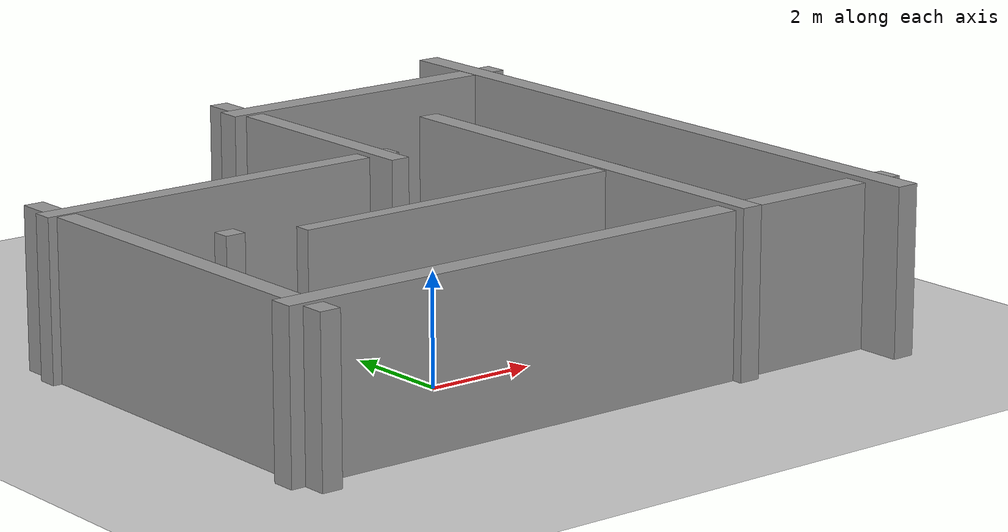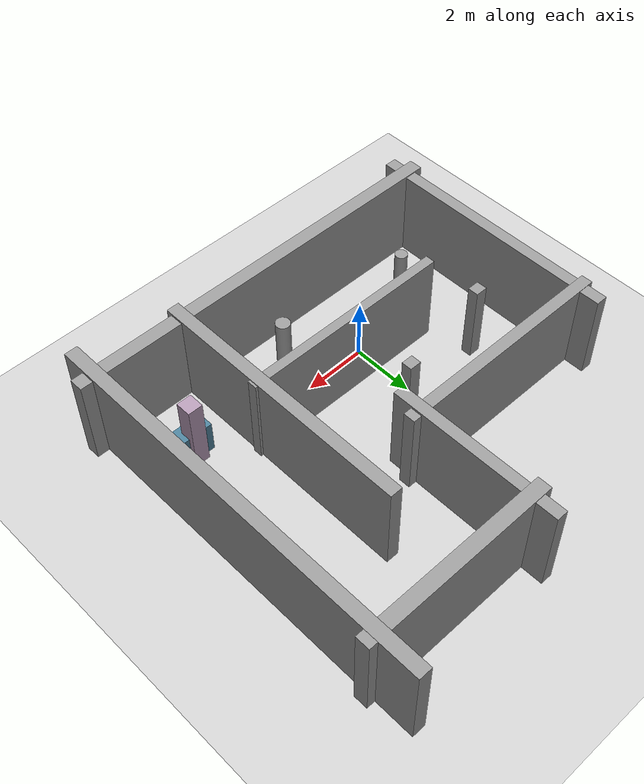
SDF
<sdf version="1.7">
 <world name="default">
  <light name="sun" type="directional">
   <pose>0 0 10 0 -0 0</pose>
   <diffuse>0.8 0.8 0.8 1</diffuse>
   <specular>0.2 0.2 0.2 1</specular>
   <attenuation>
    <range>1000</range>
    <constant>0.9</constant>
    <linear>0.01</linear>
    <quadratic>0.001</quadratic>
   </attenuation>
   <direction>-0.5 0.1 -0.9</direction>
   <spot><inner_angle>0</inner_angle><outer_angle>0</outer_angle><falloff>0</falloff></spot>
  </light>
  <model name="ground_plane">
   <static>1</static>
   <link name="link">
    <collision name="collision">
     <geometry><plane><normal>0 0 1</normal><size>100 100</size></plane></geometry>
     <surface>
      <contact><collide_bitmask>65535</collide_bitmask></contact>
      <friction><ode><mu>100</mu><mu2>50</mu2></ode></friction>
     </surface>
    </collision>
    <visual name="visual">
     <cast_shadows>0</cast_shadows>
     <geometry><plane><normal>0 0 1</normal><size>100 100</size></plane></geometry>
     <material>
      <script><uri>file://media/materials/scripts/gazebo.material</uri><name>Gazebo/Grey</name></script>
     </material>
    </visual>
   </link>
  </model>
  <gravity>0 0 -9.8</gravity>
  <magnetic_field>6e-06 2.3e-05 -4.2e-05</magnetic_field>
  <atmosphere type="adiabatic"/>
  <physics type="ode">
   <max_step_size>0.001</max_step_size>
   <real_time_factor>1</real_time_factor>
   <real_time_update_rate>1000</real_time_update_rate>
  </physics>
  <scene><ambient>0.4 0.4 0.4 1</ambient><background>0.7 0.7 0.7 1</background><shadows>1</shadows></scene>
  <spherical_coordinates>
   <surface_model>EARTH_WGS84</surface_model>
   <latitude_deg>0</latitude_deg>
   <longitude_deg>0</longitude_deg>
   <elevation>0</elevation>
   <heading_deg>0</heading_deg>
  </spherical_coordinates>
  <model name="map_gazebo">
   <link name="link_1">
    <inertial>
     <mass>10.2985</mass>
     <inertia><ixx>71.2303</ixx><ixy>0</ixy><ixz>0</ixz><iyy>7.98523</iyy><iyz>0</iyz><izz>63.516</izz></inertia>
    </inertial>
    <pose>2.43464 -2.48248 -0.477073 0 -0 0</pose>
    <visual name="visual">
     <geometry><box><size>0.397271 8.59371 3.02435</size></box></geometry>
     <material>
      <lighting>1</lighting>
      <script><uri>file://media/materials/scripts/gazebo.material</uri><name>Gazebo/Grey</name></script>
      <shader type="pixel"/>
     </material>
    </visual>
    <collision name="collision">
     <geometry><box><size>0.397271 8.59371 3.02435</size></box></geometry>
     <surface>
      <friction>
       <ode><mu>1</mu><mu2>1</mu2><fdir1>0 0 0</fdir1><slip1>0</slip1><slip2>0</slip2></ode>
       <torsional>
        <coefficient>1</coefficient>
        <patch_radius>0</patch_radius>
        <surface_radius>0</surface_radius>
        <use_patch_radius>1</use_patch_radius>
        <ode><slip>0</slip></ode>
       </torsional>
      </friction>
      <bounce><restitution_coefficient>0</restitution_coefficient><threshold>1e+06</threshold></bounce>
      <contact>
       <collide_without_contact>0</collide_without_contact>
       <collide_without_contact_bitmask>1</collide_without_contact_bitmask>
       <collide_bitmask>1</collide_bitmask>
       <ode>
        <soft_cfm>0</soft_cfm>
        <soft_erp>0.2</soft_erp>
        <kp>1e+13</kp>
        <kd>1</kd>
        <max_vel>0.01</max_vel>
        <min_depth>0</min_depth>
       </ode>
       <bullet>
        <split_impulse>1</split_impulse>
        <split_impulse_penetration_threshold>-0.01</split_impulse_penetration_threshold>
        <soft_cfm>0</soft_cfm>
        <soft_erp>0.2</soft_erp>
        <kp>1e+13</kp>
        <kd>1</kd>
       </bullet>
      </contact>
     </surface>
    </collision>
   </link>
   <link name="link_0">
    <inertial>
     <mass>0.446375</mass>
     <inertia>
      <ixx>0.185328</ixx>
      <ixy>0</ixy>
      <ixz>0</ixz>
      <iyy>0.185328</iyy>
      <iyz>0</iyz>
      <izz>0.0113327</izz>
     </inertia>
    </inertial>
    <pose>0.140139 -4.85907 -0.942998 0 0.002317 2.8e-05</pose>
    <visual name="visual">
     <geometry><cylinder><radius>0.225337</radius><length>2.1977</length></cylinder></geometry>
     <material>
      <lighting>1</lighting>
      <script><uri>file://media/materials/scripts/gazebo.material</uri><name>Gazebo/Grey</name></script>
      <shader type="pixel"/>
     </material>
    </visual>
    <collision name="collision">
     <geometry><cylinder><radius>0.225337</radius><length>2.1977</length></cylinder></geometry>
     <surface>
      <friction>
       <ode><mu>1</mu><mu2>1</mu2><fdir1>0 0 0</fdir1><slip1>0</slip1><slip2>0</slip2></ode>
       <torsional>
        <coefficient>1</coefficient>
        <patch_radius>0</patch_radius>
        <surface_radius>0</surface_radius>
        <use_patch_radius>1</use_patch_radius>
        <ode><slip>0</slip></ode>
       </torsional>
      </friction>
      <bounce><restitution_coefficient>0</restitution_coefficient><threshold>1e+06</threshold></bounce>
      <contact>
       <collide_without_contact>0</collide_without_contact>
       <collide_without_contact_bitmask>1</collide_without_contact_bitmask>
       <collide_bitmask>1</collide_bitmask>
       <ode>
        <soft_cfm>0</soft_cfm>
        <soft_erp>0.2</soft_erp>
        <kp>1e+13</kp>
        <kd>1</kd>
        <max_vel>0.01</max_vel>
        <min_depth>0</min_depth>
       </ode>
       <bullet>
        <split_impulse>1</split_impulse>
        <split_impulse_penetration_threshold>-0.01</split_impulse_penetration_threshold>
        <soft_cfm>0</soft_cfm>
        <soft_erp>0.2</soft_erp>
        <kp>1e+13</kp>
        <kd>1</kd>
       </bullet>
      </contact>
     </surface>
    </collision>
   </link>
   <link name="link_0_0">
    <inertial>
     <mass>0.68028</mass>
     <inertia>
      <ixx>0.0901942</ixx>
      <ixy>0</ixy>
      <ixz>0</ixz>
      <iyy>0.146364</iyy>
      <iyz>0</iyz>
      <izz>0.0876655</izz>
     </inertia>
    </inertial>
    <pose>4.01474 -4.42855 -1.46333 0 0.002317 2.8e-05</pose>
    <visual name="visual">
     <geometry><box><size>1.12633 0.527057 1.14596</size></box></geometry>
     <material>
      <lighting>1</lighting>
      <script><uri>file://media/materials/scripts/gazebo.material</uri><name>Gazebo/Grey</name></script>
      <shader type="pixel"><normal_map>__default__</normal_map></shader>
      <ambient>0.3 0.5 0.6 1</ambient>
      <diffuse>0.7 0.7 0.7 1</diffuse>
      <specular>0.01 0.01 0.01 1</specular>
      <emissive>0 0 0 1</emissive>
     </material>
    </visual>
    <collision name="collision">
     <geometry><box><size>1.12633 0.527057 1.14596</size></box></geometry>
     <surface>
      <friction>
       <ode><mu>1</mu><mu2>1</mu2><fdir1>0 0 0</fdir1><slip1>0</slip1><slip2>0</slip2></ode>
       <torsional>
        <coefficient>1</coefficient>
        <patch_radius>0</patch_radius>
        <surface_radius>0</surface_radius>
        <use_patch_radius>1</use_patch_radius>
        <ode><slip>0</slip></ode>
       </torsional>
      </friction>
      <bounce><restitution_coefficient>0</restitution_coefficient><threshold>1e+06</threshold></bounce>
      <contact>
       <collide_without_contact>0</collide_without_contact>
       <collide_without_contact_bitmask>1</collide_without_contact_bitmask>
       <collide_bitmask>1</collide_bitmask>
       <ode>
        <soft_cfm>0</soft_cfm>
        <soft_erp>0.2</soft_erp>
        <kp>1e+13</kp>
        <kd>1</kd>
        <max_vel>0.01</max_vel>
        <min_depth>0</min_depth>
       </ode>
       <bullet>
        <split_impulse>1</split_impulse>
        <split_impulse_penetration_threshold>-0.01</split_impulse_penetration_threshold>
        <soft_cfm>0</soft_cfm>
        <soft_erp>0.2</soft_erp>
        <kp>1e+13</kp>
        <kd>1</kd>
       </bullet>
      </contact>
     </surface>
    </collision>
   </link>
   <link name="link_10">
    <inertial>
     <mass>17.0476</mass>
     <inertia><ixx>13.4581</ixx><ixy>0</ixy><ixz>0</ixz><iyy>245.423</iyy><iyz>0</iyz><izz>232.509</izz></inertia>
    </inertial>
    <pose>-0.397469 -6.37705 -0.557675 0 -0 0</pose>
    <visual name="visual">
     <geometry><box><size>12.7857 0.437546 3.04661</size></box></geometry>
     <material>
      <lighting>1</lighting>
      <script><uri>file://media/materials/scripts/gazebo.material</uri><name>Gazebo/Grey</name></script>
      <shader type="pixel"/>
     </material>
    </visual>
    <collision name="collision">
     <geometry><box><size>12.7857 0.437546 3.04661</size></box></geometry>
     <surface>
      <friction>
       <ode><mu>1</mu><mu2>1</mu2><fdir1>0 0 0</fdir1><slip1>0</slip1><slip2>0</slip2></ode>
       <torsional>
        <coefficient>1</coefficient>
        <patch_radius>0</patch_radius>
        <surface_radius>0</surface_radius>
        <use_patch_radius>1</use_patch_radius>
        <ode><slip>0</slip></ode>
       </torsional>
      </friction>
      <bounce><restitution_coefficient>0</restitution_coefficient><threshold>1e+06</threshold></bounce>
      <contact>
       <collide_without_contact>0</collide_without_contact>
       <collide_without_contact_bitmask>1</collide_without_contact_bitmask>
       <collide_bitmask>1</collide_bitmask>
       <ode>
        <soft_cfm>0</soft_cfm>
        <soft_erp>0.2</soft_erp>
        <kp>1e+13</kp>
        <kd>1</kd>
        <max_vel>0.01</max_vel>
        <min_depth>0</min_depth>
       </ode>
       <bullet>
        <split_impulse>1</split_impulse>
        <split_impulse_penetration_threshold>-0.01</split_impulse_penetration_threshold>
        <soft_cfm>0</soft_cfm>
        <soft_erp>0.2</soft_erp>
        <kp>1e+13</kp>
        <kd>1</kd>
       </bullet>
      </contact>
     </surface>
    </collision>
   </link>
   <link name="link_12">
    <inertial>
     <mass>8.53655</mass>
     <inertia><ixx>6.65039</ixx><ixy>0</ixy><ixz>0</ixz><iyy>34.292</iyy><iyz>0</iyz><izz>27.9318</izz></inertia>
    </inertial>
    <pose>2.7519 4.11056 -0.469406 0 -0 0</pose>
    <visual name="visual">
     <geometry><box><size>6.24983 0.451674 3.024</size></box></geometry>
     <material>
      <lighting>1</lighting>
      <script><uri>file://media/materials/scripts/gazebo.material</uri><name>Gazebo/Grey</name></script>
      <shader type="pixel"/>
     </material>
    </visual>
    <collision name="collision">
     <geometry><box><size>6.24983 0.451674 3.024</size></box></geometry>
     <surface>
      <friction>
       <ode><mu>1</mu><mu2>1</mu2><fdir1>0 0 0</fdir1><slip1>0</slip1><slip2>0</slip2></ode>
       <torsional>
        <coefficient>1</coefficient>
        <patch_radius>0</patch_radius>
        <surface_radius>0</surface_radius>
        <use_patch_radius>1</use_patch_radius>
        <ode><slip>0</slip></ode>
       </torsional>
      </friction>
      <bounce><restitution_coefficient>0</restitution_coefficient><threshold>1e+06</threshold></bounce>
      <contact>
       <collide_without_contact>0</collide_without_contact>
       <collide_without_contact_bitmask>1</collide_without_contact_bitmask>
       <collide_bitmask>1</collide_bitmask>
       <ode>
        <soft_cfm>0</soft_cfm>
        <soft_erp>0.2</soft_erp>
        <kp>1e+13</kp>
        <kd>1</kd>
        <max_vel>0.01</max_vel>
        <min_depth>0</min_depth>
       </ode>
       <bullet>
        <split_impulse>1</split_impulse>
        <split_impulse_penetration_threshold>-0.01</split_impulse_penetration_threshold>
        <soft_cfm>0</soft_cfm>
        <soft_erp>0.2</soft_erp>
        <kp>1e+13</kp>
        <kd>1</kd>
       </bullet>
      </contact>
     </surface>
    </collision>
   </link>
   <link name="link_1_0">
    <inertial>
     <mass>0.326022</mass>
     <inertia>
      <ixx>0.184765</ixx>
      <ixy>0</ixy>
      <ixz>0</ixz>
      <iyy>0.185581</iyy>
      <iyz>0</iyz>
      <izz>0.00689835</izz>
     </inertia>
    </inertial>
    <pose>-1.27686 -1.21888 -0.943454 0 0.002317 2.8e-05</pose>
    <visual name="visual">
     <geometry><box><size>0.376807 0.334554 2.58627</size></box></geometry>
     <material>
      <lighting>1</lighting>
      <script><uri>file://media/materials/scripts/gazebo.material</uri><name>Gazebo/Grey</name></script>
      <shader type="pixel"/>
     </material>
    </visual>
    <collision name="collision">
     <geometry><box><size>0.376807 0.334554 2.58627</size></box></geometry>
     <surface>
      <friction>
       <ode><mu>1</mu><mu2>1</mu2><fdir1>0 0 0</fdir1><slip1>0</slip1><slip2>0</slip2></ode>
       <torsional>
        <coefficient>1</coefficient>
        <patch_radius>0</patch_radius>
        <surface_radius>0</surface_radius>
        <use_patch_radius>1</use_patch_radius>
        <ode><slip>0</slip></ode>
       </torsional>
      </friction>
      <bounce><restitution_coefficient>0</restitution_coefficient><threshold>1e+06</threshold></bounce>
      <contact>
       <collide_without_contact>0</collide_without_contact>
       <collide_without_contact_bitmask>1</collide_without_contact_bitmask>
       <collide_bitmask>1</collide_bitmask>
       <ode>
        <soft_cfm>0</soft_cfm>
        <soft_erp>0.2</soft_erp>
        <kp>1e+13</kp>
        <kd>1</kd>
        <max_vel>0.01</max_vel>
        <min_depth>0</min_depth>
       </ode>
       <bullet>
        <split_impulse>1</split_impulse>
        <split_impulse_penetration_threshold>-0.01</split_impulse_penetration_threshold>
        <soft_cfm>0</soft_cfm>
        <soft_erp>0.2</soft_erp>
        <kp>1e+13</kp>
        <kd>1</kd>
       </bullet>
      </contact>
     </surface>
    </collision>
   </link>
   <link name="link_1_0_clone">
    <inertial>
     <mass>0.326022</mass>
     <inertia>
      <ixx>0.184765</ixx>
      <ixy>0</ixy>
      <ixz>0</ixz>
      <iyy>0.185581</iyy>
      <iyz>0</iyz>
      <izz>0.00689835</izz>
     </inertia>
    </inertial>
    <pose>-4.3987 -1.65465 -0.605165 0 0.004634 5.6e-05</pose>
    <visual name="visual_0">
     <geometry><box><size>0.376807 0.334554 2.58627</size></box></geometry>
     <material>
      <lighting>1</lighting>
      <script><uri>file://media/materials/scripts/gazebo.material</uri><name>Gazebo/Grey</name></script>
      <shader type="pixel"/>
     </material>
    </visual>
    <collision name="collision">
     <geometry><box><size>0.376807 0.334554 2.58627</size></box></geometry>
     <surface>
      <friction>
       <ode><mu>1</mu><mu2>1</mu2><fdir1>0 0 0</fdir1><slip1>0</slip1><slip2>0</slip2></ode>
       <torsional>
        <coefficient>1</coefficient>
        <patch_radius>0</patch_radius>
        <surface_radius>0</surface_radius>
        <use_patch_radius>1</use_patch_radius>
        <ode><slip>0</slip></ode>
       </torsional>
      </friction>
      <bounce><restitution_coefficient>0</restitution_coefficient><threshold>1e+06</threshold></bounce>
      <contact>
       <collide_without_contact>0</collide_without_contact>
       <collide_without_contact_bitmask>1</collide_without_contact_bitmask>
       <collide_bitmask>1</collide_bitmask>
       <ode>
        <soft_cfm>0</soft_cfm>
        <soft_erp>0.2</soft_erp>
        <kp>1e+13</kp>
        <kd>1</kd>
        <max_vel>0.01</max_vel>
        <min_depth>0</min_depth>
       </ode>
       <bullet>
        <split_impulse>1</split_impulse>
        <split_impulse_penetration_threshold>-0.01</split_impulse_penetration_threshold>
        <soft_cfm>0</soft_cfm>
        <soft_erp>0.2</soft_erp>
        <kp>1e+13</kp>
        <kd>1</kd>
       </bullet>
      </contact>
     </surface>
    </collision>
   </link>
   <link name="link_2">
    <inertial>
     <mass>0.554632</mass>
     <inertia>
      <ixx>0.281109</ixx>
      <ixy>0</ixy>
      <ixz>0</ixz>
      <iyy>0.280186</iyy>
      <iyz>0</iyz>
      <izz>0.0212317</izz>
     </inertia>
    </inertial>
    <pose>3.99669 -4.24868 -0.863729 0 0.002317 2.8e-05</pose>
    <visual name="visual">
     <geometry><box><size>0.468719 0.489561 2.41711</size></box></geometry>
     <material>
      <lighting>1</lighting>
      <script><uri>file://media/materials/scripts/gazebo.material</uri><name>Gazebo/Grey</name></script>
      <shader type="pixel"><normal_map>__default__</normal_map></shader>
      <ambient>1 0.5 0.1 0</ambient>
      <diffuse>0.7 0.6 0.7 1</diffuse>
      <specular>0.01 0.01 0.01 1</specular>
      <emissive>0 0 0 1</emissive>
     </material>
    </visual>
    <collision name="collision">
     <geometry><box><size>0.468719 0.489561 2.41711</size></box></geometry>
     <surface>
      <friction>
       <ode><mu>1</mu><mu2>1</mu2><fdir1>0 0 0</fdir1><slip1>0</slip1><slip2>0</slip2></ode>
       <torsional>
        <coefficient>1</coefficient>
        <patch_radius>0</patch_radius>
        <surface_radius>0</surface_radius>
        <use_patch_radius>1</use_patch_radius>
        <ode><slip>0</slip></ode>
       </torsional>
      </friction>
      <bounce><restitution_coefficient>0</restitution_coefficient><threshold>1e+06</threshold></bounce>
      <contact>
       <collide_without_contact>0</collide_without_contact>
       <collide_without_contact_bitmask>1</collide_without_contact_bitmask>
       <collide_bitmask>1</collide_bitmask>
       <ode>
        <soft_cfm>0</soft_cfm>
        <soft_erp>0.2</soft_erp>
        <kp>1e+13</kp>
        <kd>1</kd>
        <max_vel>0.01</max_vel>
        <min_depth>0</min_depth>
       </ode>
       <bullet>
        <split_impulse>1</split_impulse>
        <split_impulse_penetration_threshold>-0.01</split_impulse_penetration_threshold>
        <soft_cfm>0</soft_cfm>
        <soft_erp>0.2</soft_erp>
        <kp>1e+13</kp>
        <kd>1</kd>
       </bullet>
      </contact>
     </surface>
    </collision>
   </link>
   <link name="link_3">
    <inertial>
     <mass>8.99885</mass>
     <inertia><ixx>57.0617</ixx><ixy>0</ixy><ixz>0</ixz><iyy>6.45009</iyy><iyz>0</iyz><izz>50.824</izz></inertia>
    </inertial>
    <pose>-6.34081 -2.91406 -0.530521 0 -0 0</pose>
    <visual name="visual">
     <geometry><box><size>0.376237 8.22389 2.90855</size></box></geometry>
     <material>
      <lighting>1</lighting>
      <script><uri>file://media/materials/scripts/gazebo.material</uri><name>Gazebo/Grey</name></script>
      <shader type="pixel"/>
     </material>
    </visual>
    <collision name="collision">
     <geometry><box><size>0.376237 8.22389 2.90855</size></box></geometry>
     <surface>
      <friction>
       <ode><mu>1</mu><mu2>1</mu2><fdir1>0 0 0</fdir1><slip1>0</slip1><slip2>0</slip2></ode>
       <torsional>
        <coefficient>1</coefficient>
        <patch_radius>0</patch_radius>
        <surface_radius>0</surface_radius>
        <use_patch_radius>1</use_patch_radius>
        <ode><slip>0</slip></ode>
       </torsional>
      </friction>
      <bounce><restitution_coefficient>0</restitution_coefficient><threshold>1e+06</threshold></bounce>
      <contact>
       <collide_without_contact>0</collide_without_contact>
       <collide_without_contact_bitmask>1</collide_without_contact_bitmask>
       <collide_bitmask>1</collide_bitmask>
       <ode>
        <soft_cfm>0</soft_cfm>
        <soft_erp>0.2</soft_erp>
        <kp>1e+13</kp>
        <kd>1</kd>
        <max_vel>0.01</max_vel>
        <min_depth>0</min_depth>
       </ode>
       <bullet>
        <split_impulse>1</split_impulse>
        <split_impulse_penetration_threshold>-0.01</split_impulse_penetration_threshold>
        <soft_cfm>0</soft_cfm>
        <soft_erp>0.2</soft_erp>
        <kp>1e+13</kp>
        <kd>1</kd>
       </bullet>
      </contact>
     </surface>
    </collision>
   </link>
   <link name="link_3_0">
    <inertial>
     <mass>0.299789</mass>
     <inertia>
      <ixx>0.0978972</ixx>
      <ixy>0</ixy>
      <ixz>0</ixz>
      <iyy>0.0978972</iyy>
      <iyz>0</iyz>
      <izz>0.00576016</izz>
     </inertia>
    </inertial>
    <pose>-4.51675 -4.72558 -1.14659 0 0.002317 2.8e-05</pose>
    <visual name="visual">
     <geometry><cylinder><radius>0.196031</radius><length>1.95022</length></cylinder></geometry>
     <material>
      <lighting>1</lighting>
      <script><uri>file://media/materials/scripts/gazebo.material</uri><name>Gazebo/Grey</name></script>
      <shader type="pixel"/>
     </material>
    </visual>
    <collision name="collision">
     <geometry><cylinder><radius>0.196031</radius><length>1.95022</length></cylinder></geometry>
     <surface>
      <friction>
       <ode><mu>1</mu><mu2>1</mu2><fdir1>0 0 0</fdir1><slip1>0</slip1><slip2>0</slip2></ode>
       <torsional>
        <coefficient>1</coefficient>
        <patch_radius>0</patch_radius>
        <surface_radius>0</surface_radius>
        <use_patch_radius>1</use_patch_radius>
        <ode><slip>0</slip></ode>
       </torsional>
      </friction>
      <bounce><restitution_coefficient>0</restitution_coefficient><threshold>1e+06</threshold></bounce>
      <contact>
       <collide_without_contact>0</collide_without_contact>
       <collide_without_contact_bitmask>1</collide_without_contact_bitmask>
       <collide_bitmask>1</collide_bitmask>
       <ode>
        <soft_cfm>0</soft_cfm>
        <soft_erp>0.2</soft_erp>
        <kp>1e+13</kp>
        <kd>1</kd>
        <max_vel>0.01</max_vel>
        <min_depth>0</min_depth>
       </ode>
       <bullet>
        <split_impulse>1</split_impulse>
        <split_impulse_penetration_threshold>-0.01</split_impulse_penetration_threshold>
        <soft_cfm>0</soft_cfm>
        <soft_erp>0.2</soft_erp>
        <kp>1e+13</kp>
        <kd>1</kd>
       </bullet>
      </contact>
     </surface>
    </collision>
   </link>
   <link name="link_5">
    <inertial>
     <mass>6.14977</mass>
     <inertia><ixx>4.74295</ixx><ixy>0</ixy><ixz>0</ixz><iyy>28.0752</iyy><iyz>0</iyz><izz>23.4249</izz></inertia>
    </inertial>
    <pose>-0.667343 -3.17966 -0.503074 0 -0 0</pose>
    <visual name="visual">
     <geometry><box><size>6.75414 0.300761 3.02728</size></box></geometry>
     <material>
      <lighting>1</lighting>
      <script><uri>file://media/materials/scripts/gazebo.material</uri><name>Gazebo/Grey</name></script>
      <shader type="pixel"/>
     </material>
    </visual>
    <collision name="collision">
     <geometry><box><size>6.75414 0.300761 3.02728</size></box></geometry>
     <surface>
      <friction>
       <ode><mu>1</mu><mu2>1</mu2><fdir1>0 0 0</fdir1><slip1>0</slip1><slip2>0</slip2></ode>
       <torsional>
        <coefficient>1</coefficient>
        <patch_radius>0</patch_radius>
        <surface_radius>0</surface_radius>
        <use_patch_radius>1</use_patch_radius>
        <ode><slip>0</slip></ode>
       </torsional>
      </friction>
      <bounce><restitution_coefficient>0</restitution_coefficient><threshold>1e+06</threshold></bounce>
      <contact>
       <collide_without_contact>0</collide_without_contact>
       <collide_without_contact_bitmask>1</collide_without_contact_bitmask>
       <collide_bitmask>1</collide_bitmask>
       <ode>
        <soft_cfm>0</soft_cfm>
        <soft_erp>0.2</soft_erp>
        <kp>1e+13</kp>
        <kd>1</kd>
        <max_vel>0.01</max_vel>
        <min_depth>0</min_depth>
       </ode>
       <bullet>
        <split_impulse>1</split_impulse>
        <split_impulse_penetration_threshold>-0.01</split_impulse_penetration_threshold>
        <soft_cfm>0</soft_cfm>
        <soft_erp>0.2</soft_erp>
        <kp>1e+13</kp>
        <kd>1</kd>
       </bullet>
      </contact>
     </surface>
    </collision>
   </link>
   <link name="link_7">
    <inertial>
     <mass>7.91092</mass>
     <inertia><ixx>5.9616</ixx><ixy>0</ixy><ixz>0</ixz><iyy>40.1584</iyy><iyz>0</iyz><izz>34.375</izz></inertia>
    </inertial>
    <pose>-3.09224 0.377491 -0.55143 0 -0 0</pose>
    <visual name="visual">
     <geometry><box><size>7.21166 0.367616 2.98462</size></box></geometry>
     <material>
      <lighting>1</lighting>
      <script><uri>file://media/materials/scripts/gazebo.material</uri><name>Gazebo/Grey</name></script>
      <shader type="pixel"/>
     </material>
    </visual>
    <collision name="collision">
     <geometry><box><size>7.21166 0.367616 2.98462</size></box></geometry>
     <surface>
      <friction>
       <ode><mu>1</mu><mu2>1</mu2><fdir1>0 0 0</fdir1><slip1>0</slip1><slip2>0</slip2></ode>
       <torsional>
        <coefficient>1</coefficient>
        <patch_radius>0</patch_radius>
        <surface_radius>0</surface_radius>
        <use_patch_radius>1</use_patch_radius>
        <ode><slip>0</slip></ode>
       </torsional>
      </friction>
      <bounce><restitution_coefficient>0</restitution_coefficient><threshold>1e+06</threshold></bounce>
      <contact>
       <collide_without_contact>0</collide_without_contact>
       <collide_without_contact_bitmask>1</collide_without_contact_bitmask>
       <collide_bitmask>1</collide_bitmask>
       <ode>
        <soft_cfm>0</soft_cfm>
        <soft_erp>0.2</soft_erp>
        <kp>1e+13</kp>
        <kd>1</kd>
        <max_vel>0.01</max_vel>
        <min_depth>0</min_depth>
       </ode>
       <bullet>
        <split_impulse>1</split_impulse>
        <split_impulse_penetration_threshold>-0.01</split_impulse_penetration_threshold>
        <soft_cfm>0</soft_cfm>
        <soft_erp>0.2</soft_erp>
        <kp>1e+13</kp>
        <kd>1</kd>
       </bullet>
      </contact>
     </surface>
    </collision>
   </link>
   <link name="link_8">
    <inertial>
     <mass>6.05037</mass>
     <inertia><ixx>19.632</ixx><ixy>0</ixy><ixz>0</ixz><iyy>4.65738</iyy><iyz>0</iyz><izz>15.1106</izz></inertia>
    </inertial>
    <pose>0.058365 2.29353 -0.496462 0 -0 0</pose>
    <visual name="visual">
     <geometry><box><size>0.367167 5.46212 3.01702</size></box></geometry>
     <material>
      <lighting>1</lighting>
      <script><uri>file://media/materials/scripts/gazebo.material</uri><name>Gazebo/Grey</name></script>
      <shader type="pixel"/>
     </material>
    </visual>
    <collision name="collision">
     <geometry><box><size>0.367167 5.46212 3.01702</size></box></geometry>
     <surface>
      <friction>
       <ode><mu>1</mu><mu2>1</mu2><fdir1>0 0 0</fdir1><slip1>0</slip1><slip2>0</slip2></ode>
       <torsional>
        <coefficient>1</coefficient>
        <patch_radius>0</patch_radius>
        <surface_radius>0</surface_radius>
        <use_patch_radius>1</use_patch_radius>
        <ode><slip>0</slip></ode>
       </torsional>
      </friction>
      <bounce><restitution_coefficient>0</restitution_coefficient><threshold>1e+06</threshold></bounce>
      <contact>
       <collide_without_contact>0</collide_without_contact>
       <collide_without_contact_bitmask>1</collide_without_contact_bitmask>
       <collide_bitmask>1</collide_bitmask>
       <ode>
        <soft_cfm>0</soft_cfm>
        <soft_erp>0.2</soft_erp>
        <kp>1e+13</kp>
        <kd>1</kd>
        <max_vel>0.01</max_vel>
        <min_depth>0</min_depth>
       </ode>
       <bullet>
        <split_impulse>1</split_impulse>
        <split_impulse_penetration_threshold>-0.01</split_impulse_penetration_threshold>
        <soft_cfm>0</soft_cfm>
        <soft_erp>0.2</soft_erp>
        <kp>1e+13</kp>
        <kd>1</kd>
       </bullet>
      </contact>
     </surface>
    </collision>
   </link>
   <link name="link_9">
    <inertial>
     <mass>16.8855</mass>
     <inertia><ixx>250.652</ixx><ixy>0</ixy><ixz>0</ixz><iyy>13.6273</iyy><iyz>0</iyz><izz>237.525</izz></inertia>
    </inertial>
    <pose>5.39696 -0.901973 -0.495671 0 -0 0</pose>
    <visual name="visual">
     <geometry><box><size>0.421767 12.9855 3.08328</size></box></geometry>
     <material>
      <lighting>1</lighting>
      <script><uri>file://media/materials/scripts/gazebo.material</uri><name>Gazebo/Grey</name></script>
      <shader type="pixel"/>
     </material>
    </visual>
    <collision name="collision">
     <geometry><box><size>0.421767 12.9855 3.08328</size></box></geometry>
     <surface>
      <friction>
       <ode><mu>1</mu><mu2>1</mu2><fdir1>0 0 0</fdir1><slip1>0</slip1><slip2>0</slip2></ode>
       <torsional>
        <coefficient>1</coefficient>
        <patch_radius>0</patch_radius>
        <surface_radius>0</surface_radius>
        <use_patch_radius>1</use_patch_radius>
        <ode><slip>0</slip></ode>
       </torsional>
      </friction>
      <bounce><restitution_coefficient>0</restitution_coefficient><threshold>1e+06</threshold></bounce>
      <contact>
       <collide_without_contact>0</collide_without_contact>
       <collide_without_contact_bitmask>1</collide_without_contact_bitmask>
       <collide_bitmask>1</collide_bitmask>
       <ode>
        <soft_cfm>0</soft_cfm>
        <soft_erp>0.2</soft_erp>
        <kp>1e+13</kp>
        <kd>1</kd>
        <max_vel>0.01</max_vel>
        <min_depth>0</min_depth>
       </ode>
       <bullet>
        <split_impulse>1</split_impulse>
        <split_impulse_penetration_threshold>-0.01</split_impulse_penetration_threshold>
        <soft_cfm>0</soft_cfm>
        <soft_erp>0.2</soft_erp>
        <kp>1e+13</kp>
        <kd>1</kd>
       </bullet>
      </contact>
     </surface>
    </collision>
   </link>
   <static>1</static>
   <pose>1.93182 3.87362 1.91963 0 -0.002317 -2.8e-05</pose>
  </model>
 </world>
</sdf>
